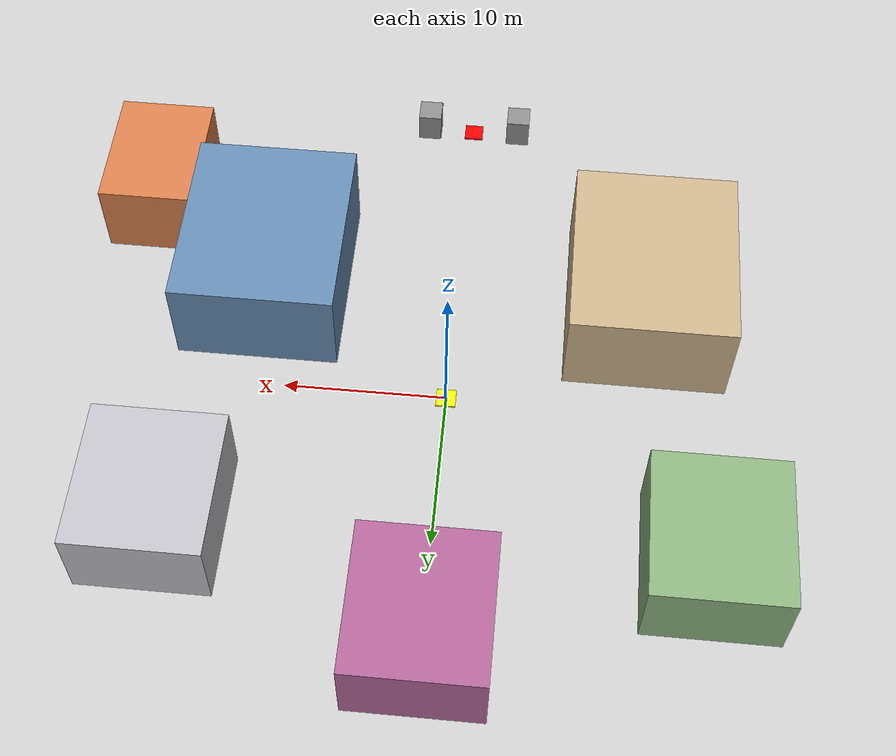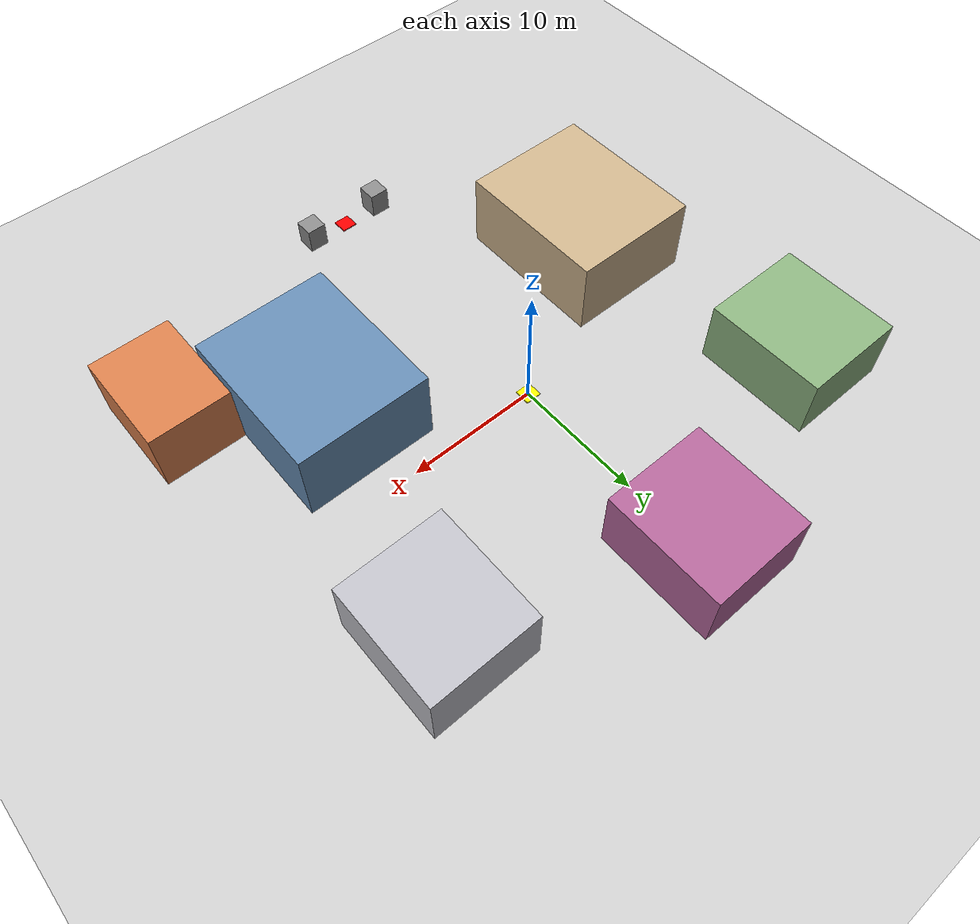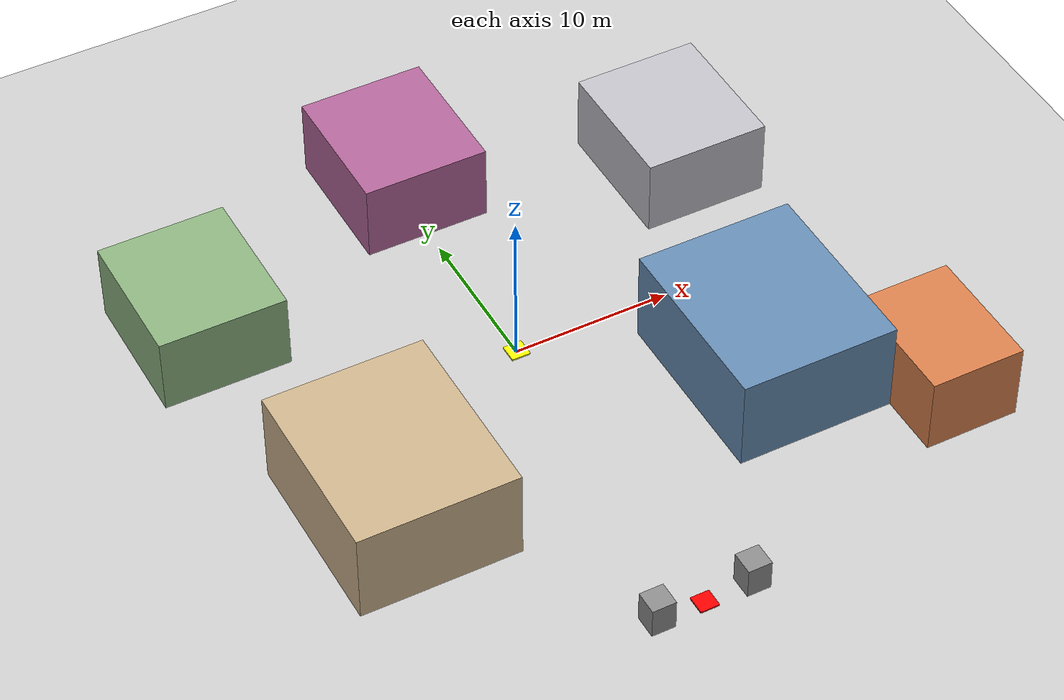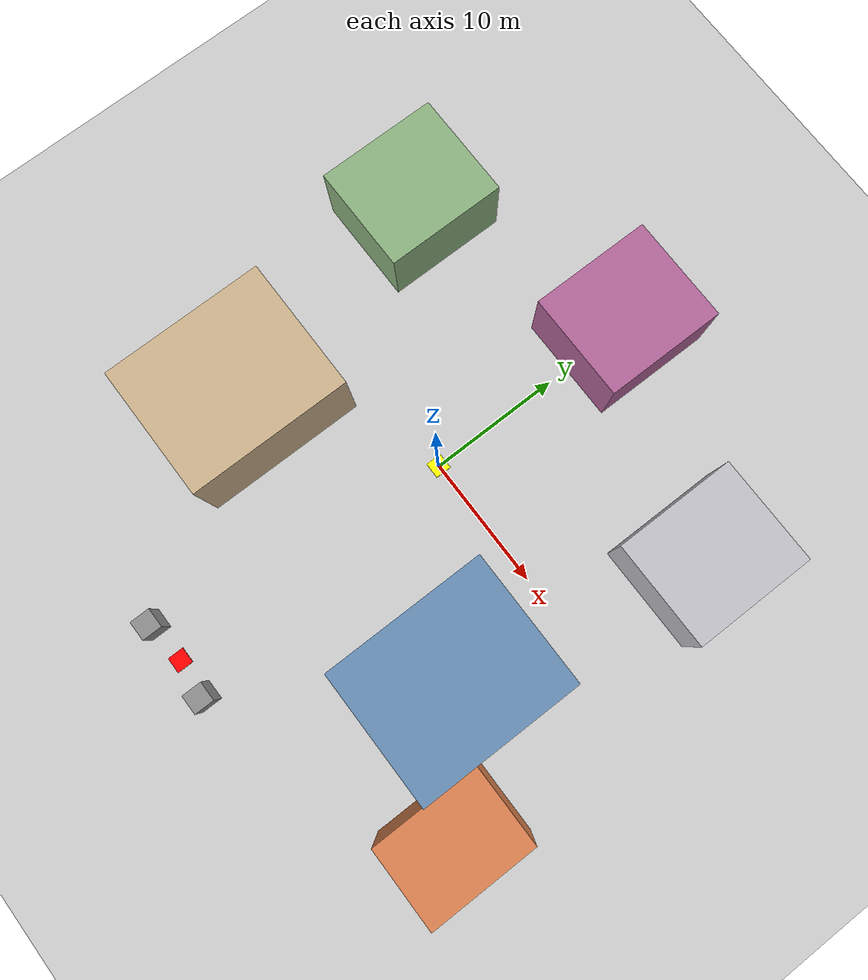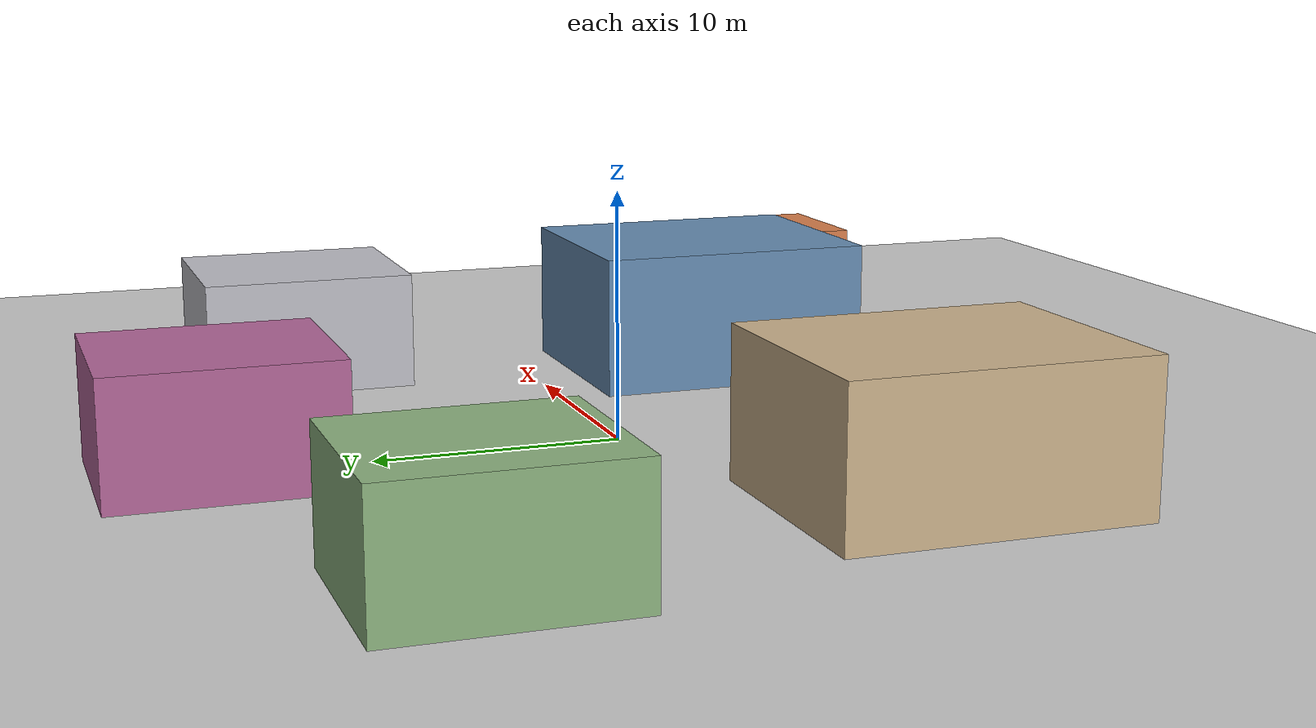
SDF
<sdf version="1.6">
 <world name="campus_world">
  <include><uri>model://sun</uri></include>
  <include><uri>model://ground_plane</uri></include>
  <plugin name="gazebo_ros_factory" filename="libgazebo_ros_factory.so"/>
  <plugin name="gazebo_ros_state" filename="libgazebo_ros_state.so"/>
  <model name="gate_pillar_left">
   <static>true</static>
   <pose>-3 -22 1 0 0 0</pose>
   <link name="link">
    <collision name="collision"><geometry><box><size>1.5 1.5 2</size></box></geometry></collision>
    <visual name="visual">
     <geometry><box><size>1.5 1.5 2</size></box></geometry>
     <material><ambient>0.55 0.55 0.55 1</ambient><diffuse>0.55 0.55 0.55 1</diffuse></material>
    </visual>
   </link>
  </model>
  <model name="gate_pillar_right">
   <static>true</static>
   <pose>3 -22 1 0 0 0</pose>
   <link name="link">
    <collision name="collision"><geometry><box><size>1.5 1.5 2</size></box></geometry></collision>
    <visual name="visual">
     <geometry><box><size>1.5 1.5 2</size></box></geometry>
     <material><ambient>0.55 0.55 0.55 1</ambient><diffuse>0.55 0.55 0.55 1</diffuse></material>
    </visual>
   </link>
  </model>
  <model name="delivery_point_gate">
   <static>true</static>
   <pose>0 -22 0.05 0 0 0</pose>
   <link name="link">
    <visual name="visual">
     <geometry><box><size>1.2 1.2 0.1</size></box></geometry>
     <material><ambient>1 0 0 1</ambient><diffuse>1 0 0 1</diffuse></material>
    </visual>
   </link>
  </model>
  <model name="ECC">
   <static>true</static>
   <pose>12 -8 3 0 0 0</pose>
   <link name="link">
    <collision name="collision"><geometry><box><size>10 12 6</size></box></geometry></collision>
    <visual name="visual">
     <geometry><box><size>10 12 6</size></box></geometry>
     <material><ambient>0.4 0.55 0.7 1</ambient><diffuse>0.4 0.55 0.7 1</diffuse></material>
    </visual>
   </link>
  </model>
  <model name="auditorium">
   <static>true</static>
   <pose>-12 -8 3 0 0 0</pose>
   <link name="link">
    <collision name="collision"><geometry><box><size>10 12 6</size></box></geometry></collision>
    <visual name="visual">
     <geometry><box><size>10 12 6</size></box></geometry>
     <material><ambient>0.8 0.7 0.55 1</ambient><diffuse>0.8 0.7 0.55 1</diffuse></material>
    </visual>
   </link>
  </model>
  <model name="hakgwan">
   <static>true</static>
   <pose>-16 10 2.5 0 0 0</pose>
   <link name="link">
    <collision name="collision"><geometry><box><size>8 9 5</size></box></geometry></collision>
    <visual name="visual">
     <geometry><box><size>8 9 5</size></box></geometry>
     <material><ambient>0.55 0.7 0.5 1</ambient><diffuse>0.55 0.7 0.5 1</diffuse></material>
    </visual>
   </link>
  </model>
  <model name="central_library">
   <static>true</static>
   <pose>16 10 2.5 0 0 0</pose>
   <link name="link">
    <collision name="collision"><geometry><box><size>8 9 5</size></box></geometry></collision>
    <visual name="visual">
     <geometry><box><size>8 9 5</size></box></geometry>
     <material><ambient>0.75 0.75 0.78 1</ambient><diffuse>0.75 0.75 0.78 1</diffuse></material>
    </visual>
   </link>
  </model>
  <model name="research_cooperation">
   <static>true</static>
   <pose>0 16 2.5 0 0 0</pose>
   <link name="link">
    <collision name="collision"><geometry><box><size>8 9 5</size></box></geometry></collision>
    <visual name="visual">
     <geometry><box><size>8 9 5</size></box></geometry>
     <material><ambient>0.7 0.4 0.6 1</ambient><diffuse>0.7 0.4 0.6 1</diffuse></material>
    </visual>
   </link>
  </model>
  <model name="art_building">
   <static>true</static>
   <pose>20 -14 2.5 0 0 0</pose>
   <link name="link">
    <collision name="collision"><geometry><box><size>6 8 5</size></box></geometry></collision>
    <visual name="visual">
     <geometry><box><size>6 8 5</size></box></geometry>
     <material><ambient>0.85 0.5 0.3 1</ambient><diffuse>0.85 0.5 0.3 1</diffuse></material>
    </visual>
   </link>
  </model>
  <model name="charging_station">
   <static>true</static>
   <pose>0 0 0.05 0 0 0</pose>
   <link name="link">
    <visual name="visual">
     <geometry><box><size>1.2 1.2 0.1</size></box></geometry>
     <material><ambient>1 1 0 1</ambient><diffuse>1 1 0 1</diffuse></material>
    </visual>
   </link>
  </model>
 </world>
</sdf>
